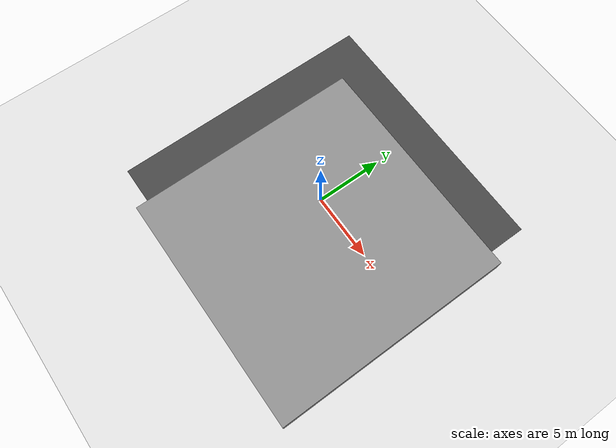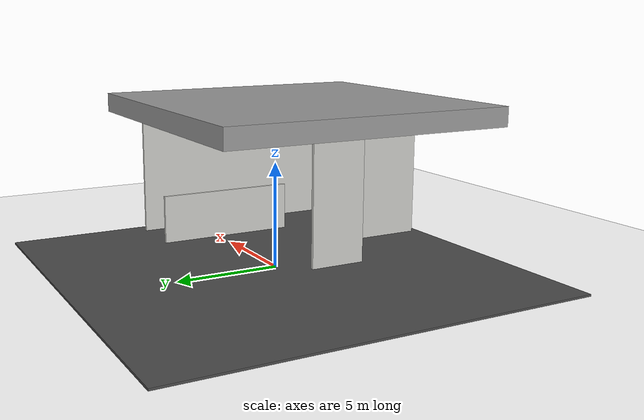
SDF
<sdf version="1.7">
 <world name="default">
  <light name="sun" type="directional">
   <pose>0 0 10 0 -0 0</pose>
   <diffuse>0.8 0.8 0.8 1</diffuse>
   <specular>0.2 0.2 0.2 1</specular>
   <attenuation>
    <range>1000</range>
    <constant>0.9</constant>
    <linear>0.01</linear>
    <quadratic>0.001</quadratic>
   </attenuation>
   <direction>-0.5 0.1 -0.9</direction>
   <spot><inner_angle>0</inner_angle><outer_angle>0</outer_angle><falloff>0</falloff></spot>
  </light>
  <model name="ground_plane">
   <static>1</static>
   <link name="link">
    <collision name="collision">
     <geometry><plane><normal>0 0 1</normal><size>100 100</size></plane></geometry>
     <surface>
      <contact><collide_bitmask>65535</collide_bitmask></contact>
      <friction><ode><mu>100</mu><mu2>50</mu2></ode></friction>
     </surface>
    </collision>
    <visual name="visual">
     <cast_shadows>0</cast_shadows>
     <geometry><plane><normal>0 0 1</normal><size>100 100</size></plane></geometry>
     <material>
      <script><uri>file://media/materials/scripts/gazebo.material</uri><name>Gazebo/Grey</name></script>
     </material>
    </visual>
   </link>
  </model>
  <model name="asphalt_plane">
   <static>1</static>
   <link name="link">
    <collision name="collision"><geometry><box><size>20 20 0.1</size></box></geometry></collision>
    <visual name="visual">
     <cast_shadows>0</cast_shadows>
     <geometry><box><size>20 20 0.1</size></box></geometry>
     <material>
      <script>
       <uri>model://asphalt_plane/materials/scripts</uri>
       <uri>model://asphalt_plane/materials/textures</uri>
       <name>vrc/asphalt</name>
      </script>
     </material>
    </visual>
   </link>
  </model>
  <physics name="default_physics" default="0" type="ode">
   <ode>
    <solver>
     <type>quick</type>
     <iters>50</iters>
     <sor>1</sor>
     <use_dynamic_moi_rescaling>0</use_dynamic_moi_rescaling>
    </solver>
    <constraints>
     <cfm>0</cfm>
     <erp>0.2</erp>
     <contact_max_correcting_vel>100</contact_max_correcting_vel>
     <contact_surface_layer>0.001</contact_surface_layer>
    </constraints>
   </ode>
   <max_step_size>0.004</max_step_size>
   <real_time_factor>1</real_time_factor>
   <real_time_update_rate>250</real_time_update_rate>
  </physics>
  <gravity>0 0 -9.8066</gravity>
  <magnetic_field>6e-06 2.3e-05 -4.2e-05</magnetic_field>
  <atmosphere type="adiabatic"/>
  <scene><ambient>0.4 0.4 0.4 1</ambient><background>0.7 0.7 0.7 1</background><shadows>1</shadows></scene>
  <spherical_coordinates>
   <surface_model>EARTH_WGS84</surface_model>
   <latitude_deg>0</latitude_deg>
   <longitude_deg>0</longitude_deg>
   <elevation>0</elevation>
   <heading_deg>0</heading_deg>
  </spherical_coordinates>
  <model name="wall">
   <link name="Wall_0">
    <pose>-5.225 0.6 0 0 0 -1.5708</pose>
    <inertial>
     <mass>1</mass>
     <inertia><ixx>1</ixx><ixy>0</ixy><ixz>0</ixz><iyy>1</iyy><iyz>0</iyz><izz>1</izz></inertia>
    </inertial>
    <visual name="Wall_0_Visual">
     <pose>0 0 1.25 0 -0 0</pose>
     <geometry><box><size>2.75 0.15 10</size></box></geometry>
     <material>
      <script><uri>file://media/materials/scripts/gazebo.material</uri><name>Gazebo/CeilingTiled</name></script>
      <ambient>1 1 1 1</ambient>
      <shader type="pixel"><normal_map>__default__</normal_map></shader>
      <diffuse>1 1 1 1</diffuse>
      <specular>0 0 0 1</specular>
      <emissive>0 0 0 1</emissive>
     </material>
     <meta><layer>0</layer></meta>
    </visual>
    <collision name="Wall_0_Collision">
     <pose>0 0 1.25 0 -0 0</pose>
     <geometry><box><size>2.75 0.15 10</size></box></geometry>
     <surface>
      <friction>
       <ode><mu>1</mu><mu2>1</mu2><fdir1>0 0 0</fdir1><slip1>0</slip1><slip2>0</slip2></ode>
       <torsional>
        <coefficient>1</coefficient>
        <patch_radius>0</patch_radius>
        <surface_radius>0</surface_radius>
        <use_patch_radius>1</use_patch_radius>
        <ode><slip>0</slip></ode>
       </torsional>
      </friction>
      <bounce><restitution_coefficient>0</restitution_coefficient><threshold>1e+06</threshold></bounce>
      <contact>
       <collide_without_contact>0</collide_without_contact>
       <collide_without_contact_bitmask>1</collide_without_contact_bitmask>
       <collide_bitmask>1</collide_bitmask>
       <ode>
        <soft_cfm>0</soft_cfm>
        <soft_erp>0.2</soft_erp>
        <kp>1e+13</kp>
        <kd>1</kd>
        <max_vel>0.01</max_vel>
        <min_depth>0</min_depth>
       </ode>
       <bullet>
        <split_impulse>1</split_impulse>
        <split_impulse_penetration_threshold>-0.01</split_impulse_penetration_threshold>
        <soft_cfm>0</soft_cfm>
        <soft_erp>0.2</soft_erp>
        <kp>1e+13</kp>
        <kd>1</kd>
       </bullet>
      </contact>
     </surface>
    </collision>
   </link>
   <link name="Wall_1">
    <pose>-3.425 -0.7 0 0 -0 0</pose>
    <inertial>
     <mass>1</mass>
     <inertia><ixx>1</ixx><ixy>0</ixy><ixz>0</ixz><iyy>1</iyy><iyz>0</iyz><izz>1</izz></inertia>
    </inertial>
    <visual name="Wall_1_Visual">
     <pose>0 0 1.25 0 -0 0</pose>
     <geometry><box><size>3.75 0.15 10</size></box></geometry>
     <material>
      <script><uri>file://media/materials/scripts/gazebo.material</uri><name>Gazebo/CeilingTiled</name></script>
      <ambient>1 1 1 1</ambient>
      <shader type="pixel"><normal_map>__default__</normal_map></shader>
      <diffuse>1 1 1 1</diffuse>
      <specular>0 0 0 1</specular>
      <emissive>0 0 0 1</emissive>
     </material>
     <meta><layer>0</layer></meta>
    </visual>
    <collision name="Wall_1_Collision">
     <pose>0 0 1.25 0 -0 0</pose>
     <geometry><box><size>3.75 0.15 10</size></box></geometry>
     <surface>
      <friction>
       <ode><mu>1</mu><mu2>1</mu2><fdir1>0 0 0</fdir1><slip1>0</slip1><slip2>0</slip2></ode>
       <torsional>
        <coefficient>1</coefficient>
        <patch_radius>0</patch_radius>
        <surface_radius>0</surface_radius>
        <use_patch_radius>1</use_patch_radius>
        <ode><slip>0</slip></ode>
       </torsional>
      </friction>
      <bounce><restitution_coefficient>0</restitution_coefficient><threshold>1e+06</threshold></bounce>
      <contact>
       <collide_without_contact>0</collide_without_contact>
       <collide_without_contact_bitmask>1</collide_without_contact_bitmask>
       <collide_bitmask>1</collide_bitmask>
       <ode>
        <soft_cfm>0</soft_cfm>
        <soft_erp>0.2</soft_erp>
        <kp>1e+13</kp>
        <kd>1</kd>
        <max_vel>0.01</max_vel>
        <min_depth>0</min_depth>
       </ode>
       <bullet>
        <split_impulse>1</split_impulse>
        <split_impulse_penetration_threshold>-0.01</split_impulse_penetration_threshold>
        <soft_cfm>0</soft_cfm>
        <soft_erp>0.2</soft_erp>
        <kp>1e+13</kp>
        <kd>1</kd>
       </bullet>
      </contact>
     </surface>
    </collision>
   </link>
   <link name="Wall_2">
    <pose>-1.625 -3.5 0 0 0 -1.5708</pose>
    <inertial>
     <mass>1</mass>
     <inertia><ixx>1</ixx><ixy>0</ixy><ixz>0</ixz><iyy>1</iyy><iyz>0</iyz><izz>1</izz></inertia>
    </inertial>
    <visual name="Wall_2_Visual">
     <pose>0 0 1.25 0 -0 0</pose>
     <geometry><box><size>5.75 0.15 10</size></box></geometry>
     <material>
      <script><uri>file://media/materials/scripts/gazebo.material</uri><name>Gazebo/CeilingTiled</name></script>
      <ambient>1 1 1 1</ambient>
      <shader type="pixel"><normal_map>__default__</normal_map></shader>
      <diffuse>1 1 1 1</diffuse>
      <specular>0 0 0 1</specular>
      <emissive>0 0 0 1</emissive>
     </material>
     <meta><layer>0</layer></meta>
    </visual>
    <collision name="Wall_2_Collision">
     <pose>0 0 1.25 0 -0 0</pose>
     <geometry><box><size>5.75 0.15 10</size></box></geometry>
     <surface>
      <friction>
       <ode><mu>1</mu><mu2>1</mu2><fdir1>0 0 0</fdir1><slip1>0</slip1><slip2>0</slip2></ode>
       <torsional>
        <coefficient>1</coefficient>
        <patch_radius>0</patch_radius>
        <surface_radius>0</surface_radius>
        <use_patch_radius>1</use_patch_radius>
        <ode><slip>0</slip></ode>
       </torsional>
      </friction>
      <bounce><restitution_coefficient>0</restitution_coefficient><threshold>1e+06</threshold></bounce>
      <contact>
       <collide_without_contact>0</collide_without_contact>
       <collide_without_contact_bitmask>1</collide_without_contact_bitmask>
       <collide_bitmask>1</collide_bitmask>
       <ode>
        <soft_cfm>0</soft_cfm>
        <soft_erp>0.2</soft_erp>
        <kp>1e+13</kp>
        <kd>1</kd>
        <max_vel>0.01</max_vel>
        <min_depth>0</min_depth>
       </ode>
       <bullet>
        <split_impulse>1</split_impulse>
        <split_impulse_penetration_threshold>-0.01</split_impulse_penetration_threshold>
        <soft_cfm>0</soft_cfm>
        <soft_erp>0.2</soft_erp>
        <kp>1e+13</kp>
        <kd>1</kd>
       </bullet>
      </contact>
     </surface>
    </collision>
   </link>
   <link name="Wall_3">
    <pose>1.8 -6.3 0 0 -0 0</pose>
    <inertial>
     <mass>1</mass>
     <inertia><ixx>1</ixx><ixy>0</ixy><ixz>0</ixz><iyy>1</iyy><iyz>0</iyz><izz>1</izz></inertia>
    </inertial>
    <visual name="Wall_3_Visual">
     <pose>0 0 1.25 0 -0 0</pose>
     <geometry><box><size>7 0.15 10</size></box></geometry>
     <material>
      <script><uri>file://media/materials/scripts/gazebo.material</uri><name>Gazebo/CeilingTiled</name></script>
      <ambient>1 1 1 1</ambient>
      <shader type="pixel"><normal_map>__default__</normal_map></shader>
      <diffuse>1 1 1 1</diffuse>
      <specular>0 0 0 1</specular>
      <emissive>0 0 0 1</emissive>
     </material>
     <meta><layer>0</layer></meta>
    </visual>
    <collision name="Wall_3_Collision">
     <pose>0 0 1.25 0 -0 0</pose>
     <geometry><box><size>7 0.15 10</size></box></geometry>
     <surface>
      <friction>
       <ode><mu>1</mu><mu2>1</mu2><fdir1>0 0 0</fdir1><slip1>0</slip1><slip2>0</slip2></ode>
       <torsional>
        <coefficient>1</coefficient>
        <patch_radius>0</patch_radius>
        <surface_radius>0</surface_radius>
        <use_patch_radius>1</use_patch_radius>
        <ode><slip>0</slip></ode>
       </torsional>
      </friction>
      <bounce><restitution_coefficient>0</restitution_coefficient><threshold>1e+06</threshold></bounce>
      <contact>
       <collide_without_contact>0</collide_without_contact>
       <collide_without_contact_bitmask>1</collide_without_contact_bitmask>
       <collide_bitmask>1</collide_bitmask>
       <ode>
        <soft_cfm>0</soft_cfm>
        <soft_erp>0.2</soft_erp>
        <kp>1e+13</kp>
        <kd>1</kd>
        <max_vel>0.01</max_vel>
        <min_depth>0</min_depth>
       </ode>
       <bullet>
        <split_impulse>1</split_impulse>
        <split_impulse_penetration_threshold>-0.01</split_impulse_penetration_threshold>
        <soft_cfm>0</soft_cfm>
        <soft_erp>0.2</soft_erp>
        <kp>1e+13</kp>
        <kd>1</kd>
       </bullet>
      </contact>
     </surface>
    </collision>
   </link>
   <link name="Wall_4">
    <pose>5.225 0 0 0 -0 1.5708</pose>
    <inertial>
     <mass>1</mass>
     <inertia><ixx>1</ixx><ixy>0</ixy><ixz>0</ixz><iyy>1</iyy><iyz>0</iyz><izz>1</izz></inertia>
    </inertial>
    <visual name="Wall_4_Visual">
     <pose>0 0 1.25 0 -0 0</pose>
     <geometry><box><size>12.75 0.15 10</size></box></geometry>
     <material>
      <script><uri>file://media/materials/scripts/gazebo.material</uri><name>Gazebo/CeilingTiled</name></script>
      <ambient>1 1 1 1</ambient>
      <shader type="pixel"><normal_map>__default__</normal_map></shader>
      <diffuse>1 1 1 1</diffuse>
      <specular>0 0 0 1</specular>
      <emissive>0 0 0 1</emissive>
     </material>
     <meta><layer>0</layer></meta>
    </visual>
    <collision name="Wall_4_Collision">
     <pose>0 0 1.25 0 -0 0</pose>
     <geometry><box><size>12.75 0.15 10</size></box></geometry>
     <surface>
      <friction>
       <ode><mu>1</mu><mu2>1</mu2><fdir1>0 0 0</fdir1><slip1>0</slip1><slip2>0</slip2></ode>
       <torsional>
        <coefficient>1</coefficient>
        <patch_radius>0</patch_radius>
        <surface_radius>0</surface_radius>
        <use_patch_radius>1</use_patch_radius>
        <ode><slip>0</slip></ode>
       </torsional>
      </friction>
      <bounce><restitution_coefficient>0</restitution_coefficient><threshold>1e+06</threshold></bounce>
      <contact>
       <collide_without_contact>0</collide_without_contact>
       <collide_without_contact_bitmask>1</collide_without_contact_bitmask>
       <collide_bitmask>1</collide_bitmask>
       <ode>
        <soft_cfm>0</soft_cfm>
        <soft_erp>0.2</soft_erp>
        <kp>1e+13</kp>
        <kd>1</kd>
        <max_vel>0.01</max_vel>
        <min_depth>0</min_depth>
       </ode>
       <bullet>
        <split_impulse>1</split_impulse>
        <split_impulse_penetration_threshold>-0.01</split_impulse_penetration_threshold>
        <soft_cfm>0</soft_cfm>
        <soft_erp>0.2</soft_erp>
        <kp>1e+13</kp>
        <kd>1</kd>
       </bullet>
      </contact>
     </surface>
    </collision>
   </link>
   <link name="Wall_6">
    <pose>2.3466 2.84484 0 0 0 -1.5708</pose>
    <visual name="Wall_6_Visual">
     <pose>0 0 1.25 0 -0 0</pose>
     <geometry><box><size>7 0.15 2.5</size></box></geometry>
     <material>
      <script><uri>file://media/materials/scripts/gazebo.material</uri><name>Gazebo/CeilingTiled</name></script>
      <ambient>1 1 1 1</ambient>
      <shader type="pixel"/>
     </material>
     <meta><layer>0</layer></meta>
    </visual>
    <collision name="Wall_6_Collision">
     <pose>0 0 1.25 0 -0 0</pose>
     <geometry><box><size>7 0.15 2.5</size></box></geometry>
     <surface>
      <friction>
       <ode><mu>1</mu><mu2>1</mu2><fdir1>0 0 0</fdir1><slip1>0</slip1><slip2>0</slip2></ode>
       <torsional>
        <coefficient>1</coefficient>
        <patch_radius>0</patch_radius>
        <surface_radius>0</surface_radius>
        <use_patch_radius>1</use_patch_radius>
        <ode><slip>0</slip></ode>
       </torsional>
      </friction>
      <bounce><restitution_coefficient>0</restitution_coefficient><threshold>1e+06</threshold></bounce>
      <contact>
       <collide_without_contact>0</collide_without_contact>
       <collide_without_contact_bitmask>1</collide_without_contact_bitmask>
       <collide_bitmask>1</collide_bitmask>
       <ode>
        <soft_cfm>0</soft_cfm>
        <soft_erp>0.2</soft_erp>
        <kp>1e+13</kp>
        <kd>1</kd>
        <max_vel>0.01</max_vel>
        <min_depth>0</min_depth>
       </ode>
       <bullet>
        <split_impulse>1</split_impulse>
        <split_impulse_penetration_threshold>-0.01</split_impulse_penetration_threshold>
        <soft_cfm>0</soft_cfm>
        <soft_erp>0.2</soft_erp>
        <kp>1e+13</kp>
        <kd>1</kd>
       </bullet>
      </contact>
     </surface>
    </collision>
   </link>
   <link name="link_0">
    <inertial>
     <mass>157500</mass>
     <inertia>
      <ixx>2.96625e+06</ixx>
      <ixy>0</ixy>
      <ixz>0</ixz>
      <iyy>2.96625e+06</iyy>
      <iyz>0</iyz>
      <izz>5.90625e+06</izz>
     </inertia>
    </inertial>
    <pose>0 0 6.9 0 -0 0</pose>
    <visual name="visual">
     <geometry><box><size>15 15 1</size></box></geometry>
     <material>
      <lighting>1</lighting>
      <script><uri>file://media/materials/scripts/gazebo.material</uri><name>Gazebo/Grey</name></script>
      <shader type="pixel"><normal_map>__default__</normal_map></shader>
      <ambient>0.3 0.3 0.3 1</ambient>
      <diffuse>0.7 0.7 0.7 1</diffuse>
      <specular>0.01 0.01 0.01 1</specular>
      <emissive>0 0 0 1</emissive>
     </material>
    </visual>
    <collision name="collision">
     <geometry><box><size>15 15 1</size></box></geometry>
     <surface>
      <friction>
       <ode><mu>1</mu><mu2>1</mu2><fdir1>0 0 0</fdir1><slip1>0</slip1><slip2>0</slip2></ode>
       <torsional>
        <coefficient>1</coefficient>
        <patch_radius>0</patch_radius>
        <surface_radius>0</surface_radius>
        <use_patch_radius>1</use_patch_radius>
        <ode><slip>0</slip></ode>
       </torsional>
      </friction>
      <bounce><restitution_coefficient>0</restitution_coefficient><threshold>1e+06</threshold></bounce>
      <contact>
       <collide_without_contact>0</collide_without_contact>
       <collide_without_contact_bitmask>1</collide_without_contact_bitmask>
       <collide_bitmask>1</collide_bitmask>
       <ode>
        <soft_cfm>0</soft_cfm>
        <soft_erp>0.2</soft_erp>
        <kp>1e+13</kp>
        <kd>1</kd>
        <max_vel>0.01</max_vel>
        <min_depth>0</min_depth>
       </ode>
       <bullet>
        <split_impulse>1</split_impulse>
        <split_impulse_penetration_threshold>-0.01</split_impulse_penetration_threshold>
        <soft_cfm>0</soft_cfm>
        <soft_erp>0.2</soft_erp>
        <kp>1e+13</kp>
        <kd>1</kd>
       </bullet>
      </contact>
     </surface>
    </collision>
   </link>
   <static>1</static>
   <pose>3.965 -3.25 0 0 -0 0</pose>
  </model>
 </world>
</sdf>
